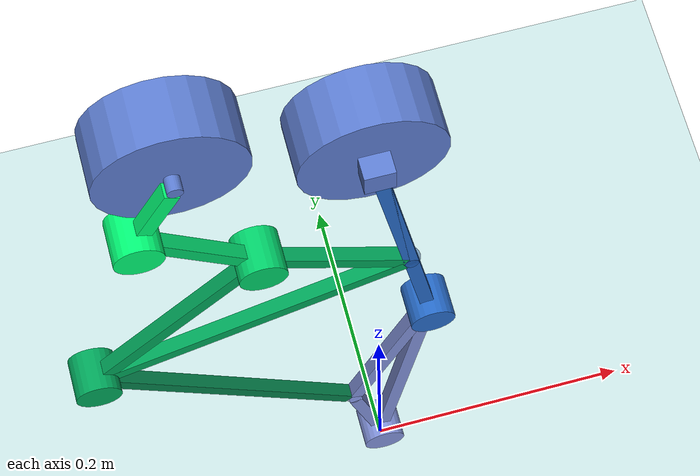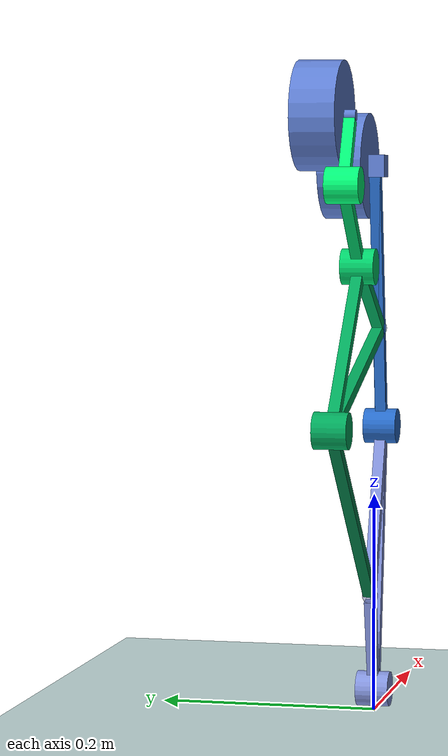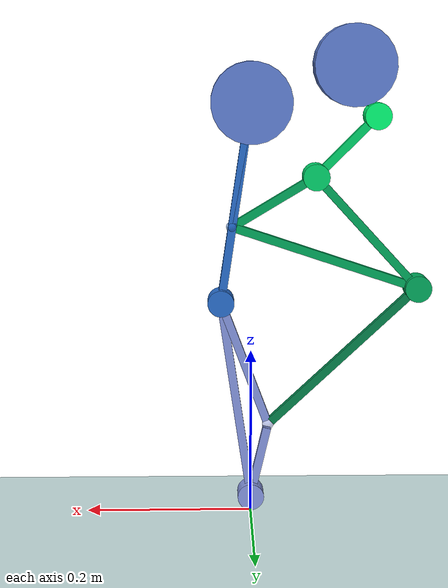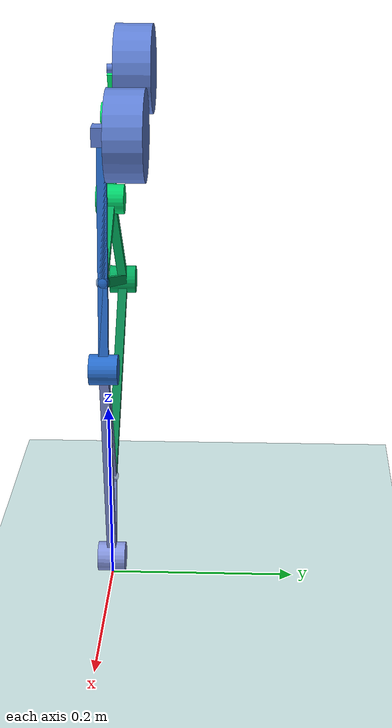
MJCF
<?xml version="1.0" encoding="utf-8"?>
<mujoco model="robot_8">
  <compiler angle="radian" inertiafromgeom="true" coordinate="local" />
  <option timestep="0.01" gravity="0 0 -9.81" integrator="RK4" />
  <size njmax="500" nconmax="100" />
  <worldbody>
    <geom name="floor" type="plane" size="10 10 0.1" pos="0 0 0" rgba="0.8 0.9 0.9 1" />
    <light name="light1" pos="0 0 3" dir="0 0 -1" directional="true" />
    <body name="robot_root" pos="0 0 0.5" quat="1 0 0 0">
      <body name="G">
        <geom name="G_vis0" type="box" rgba="0.37254901960784315 0.5019607843137255 0.8352941176470589 1.0" contype="1" conaffinity="1" pos="0.0 0.0 0.0" quat="1.0 0.0 0.0 0.0" size="0.01 0.01 0.01" />
        <inertial pos="0.0 0.0 0.0" mass="0.0013042811109406167" diaginertia="8.695207406270778e-08 8.695207406270778e-08 8.695207406270778e-08" />
        <body name="L3" pos="0.0 0.0 0.0" quat="0.07437622984429398 5.650851124421949e-17 0.9972302524663743 5.650851124421949e-17">
          <joint name="Main_ground" type="hinge" axis="0 1 0" range="-3.141592653589793 3.141592653589793" damping="0.1" />
          <geom name="L3_vis0" type="box" rgba="0.1568627450980392 0.42745098039215684 0.8 1.0" contype="1" conaffinity="1" pos="1.7610718508157328e-18 0.0 0.196574834605043" quat="1.0 0.0 0.0 0.0" size="0.004999999888241291 0.004999999888241291 0.041110146500595954" />
          <geom name="L3_vis1" type="box" rgba="0.1568627450980392 0.42745098039215684 0.8 1.0" contype="1" conaffinity="1" pos="7.545012591839255e-19 0.0 0.07523234410810287" quat="1.0 0.0 0.0 0.0" size="0.004999999888241291 0.004999999888241291 0.07023234421986158" />
          <geom name="L3_vis2" type="box" rgba="0.1568627450980392 0.42745098039215684 0.8 1.0" contype="1" conaffinity="1" pos="1.0065705916318073e-18 0.0 0.12134249049694011" quat="1.0 0.0 0.0 0.0" size="0.004999999888241291 0.004999999888241291 0.11634249060869882" />
          <inertial pos="0.0 0.0 0.13105" mass="0.017546124353751944" diaginertia="0.0011902346418932457 0.0011978113497965826 7.86914329615975e-06" />
          <body name="L4" pos="2.0131411832636146e-18 0.0 0.24268498099388022" quat="0.9889363528682975 0.0 0.14834045293024475 0.0">
            <joint name="Main_knee" type="hinge" axis="0 1 0" range="-3.141592653589793 3.141592653589793" damping="0.1" />
            <geom name="L4_vis0" type="box" rgba="0.5176470588235295 0.5843137254901961 0.8705882352941177 1.0" contype="1" conaffinity="1" pos="0.016987948669571616 0.0 0.20021510931995118" quat="0.18910752115495139 4.8547991271791733e-17 0.9819563867314218 4.8547991271791733e-17" size="0.004999999888241291 0.004999999888241291 0.04074145177215096" />
            <geom name="L4_vis1" type="box" rgba="0.5176470588235295 0.5843137254901961 0.8705882352941177 1.0" contype="1" conaffinity="1" pos="0.0 0.0 0.12134249049694013" quat="1.0 0.0 0.0 0.0" size="0.004999999888241291 0.004999999888241291 0.1163424906086988" />
            <geom name="L4_vis2" type="box" rgba="0.5176470588235295 0.5843137254901961 0.8705882352941177 1.0" contype="1" conaffinity="1" pos="0.016987948669571616 0.0 0.07887261882301108" quat="0.10587308162694284 -5.440533631833179e-17 -0.9943796511327123 5.440533631833179e-17" size="0.004999999888241291 0.004999999888241291 0.07568135111680818" />
            <inertial pos="0.01133 0.0 0.13348" mass="0.03313548282553443" diaginertia="0.008261641030532445 0.008270122696172381 9.033923662340547e-06" />
            <body name="EE" pos="0.0 0.0 0.24268498099388022" quat="0.07437622984429398 5.650851124421949e-17 0.9972302524663743 5.650851124421949e-17">
              <geom name="EE_vis0" type="sphere" rgba="0.6431372549019608 0.6666666666666666 0.9058823529411765 1.0" contype="1" conaffinity="1" pos="0.0 0.0 0.0" quat="1.0 0.0 0.0 0.0" size="0.002142857142857143" />
              <inertial pos="0.0 0.0 0.0" mass="2.979933439782622e-05" diaginertia="5.473347134294612e-11 5.473347134294612e-11 5.473347134294612e-11" />
            </body>
            <body name="Main_ee_L4Unit" pos="0.0 0.0 0.24268498099388022" quat="0.0525919364819896 0.0525919364819895 0.7051482739233461 -0.705148273923346">
              <geom name="Main_ee_L4Unit_vis0" type="cylinder" rgba="0.5176470588235295 0.5843137254901961 0.8705882352941177 0.9" contype="1" conaffinity="1" size="0.016 0.015" />
              <inertial pos="0 0 0" mass="0.1" diaginertia="0.00065 0.00065 0.0008" />
            </body>
            <body name="Main_connection_2_L4Pseudo" pos="0.03397589733914319 0.0 0.15774523764602216" quat="0.8849644773657072 0.0 -0.4656585377729487 0.0">
              <geom name="Main_connection_2_L4Pseudo_vis0" type="sphere" rgba="0.5176470588235295 0.5843137254901961 0.8705882352941177 0.5" contype="1" conaffinity="1" size="0.007142856983201845" />
              <inertial pos="0 0 0" mass="0.05" diaginertia="1.0204081176495075e-06 1.0204081176495075e-06 1.0204081176495075e-06" />
            </body>
          </body>
          <body name="Main_knee_L3Unit" pos="2.0131411832636146e-18 0.0 0.24268498099388022" quat="0.6992836012750656 0.6992836012750655 0.10489254019125986 -0.10489254019125985">
            <geom name="Main_knee_L3Unit_vis0" type="cylinder" rgba="0.1568627450980392 0.42745098039215684 0.8 0.9" contype="1" conaffinity="1" size="0.016 0.015" />
            <inertial pos="0 0 0" mass="0.1" diaginertia="0.00065 0.00065 0.0008" />
          </body>
          <body name="Main_connection_1_L3Pseudo" pos="1.509002518367851e-18 0.0 0.15046468821620573" quat="1.0 0.0 0.0 0.0">
            <joint name="Main_connection_1_L3_revolute" type="hinge" axis="0 1 0" range="-3.141592653589793 3.141592653589793" damping="0.1" />
            <geom name="Main_connection_1_L3Pseudo_vis0" type="sphere" rgba="0.1568627450980392 0.42745098039215684 0.8 0.5" contype="1" conaffinity="1" size="0.007142856983201845" />
            <inertial pos="0 0 0" mass="0.05" diaginertia="1.0204081176495075e-06 1.0204081176495075e-06 1.0204081176495075e-06" />
          </body>
        </body>
        <body name="Main_ground_GActuator" pos="0.0 0.02499999988824129 0.0" quat="0.0525919364819896 0.0525919364819895 0.7051482739233461 -0.705148273923346">
          <geom name="Main_ground_GActuator_vis0" type="cylinder" rgba="0.37254901960784315 0.5019607843137255 0.8352941176470589 0.9" contype="1" conaffinity="1" size="0.048 0.02" />
          <inertial pos="0 0 0" mass="0.44" diaginertia="0.0067466666666666664 0.0067466666666666664 0.01056" />
        </body>
        <body name="Main_ground_GUnit" pos="0.0 0.0 0.0" quat="0.0525919364819896 0.0525919364819895 0.7051482739233461 -0.705148273923346">
          <geom name="Main_ground_GUnit_vis0" type="cylinder" rgba="0.37254901960784315 0.5019607843137255 0.8352941176470589 0.9" contype="1" conaffinity="1" size="0.004999999888241291 0.004999999888241291" />
          <inertial pos="0 0 0" mass="0.1" diaginertia="0.00020833332867672047 0.00020833332867672047 0.00024999999441206456" />
        </body>
        <body name="L8" pos="-0.12 0.0 0.0432" quat="-0.2297529205473612 7.366262192340669e-17 0.9732489894677302 7.366262192340669e-17">
          <joint name="Ground_connection" type="hinge" axis="0 1 0" range="-3.141592653589793 3.141592653589793" damping="0.1" />
          <geom name="L8_vis0" type="box" rgba="0.0 1.0 0.4666666666666667 1.0" contype="1" conaffinity="1" pos="0.0 0.0 0.03354" quat="1.0 0.0 0.0 0.0" size="0.005 0.005 0.02854101966249684" />
          <inertial pos="0.0 0.0 0.03354" mass="0.004127031443197043" diaginertia="1.1550045059721254e-06 1.1550045059721254e-06 6.878385738661739e-08" />
          <body name="L7" pos="-2.7755575615628914e-17 0.0 0.06708203932499368" quat="0.8105934502576708 0.0 -0.5856093052533957 0.0">
            <joint name="branch_2" type="hinge" axis="0 1 0" range="-3.141592653589793 3.141592653589793" damping="0.1" />
            <geom name="L7_vis0" type="box" rgba="0.0 0.8274509803921568 0.4196078431372549 1.0" contype="1" conaffinity="1" pos="-0.0 0.0 0.05102" quat="1.0 0.0 0.0 0.0" size="0.005 0.005 0.04602495075940789" />
            <inertial pos="-0.0 0.0 0.05102" mass="0.006655207879810382" diaginertia="4.754693680982228e-06 4.754693680982228e-06 1.1092013133017303e-07" />
            <body name="L6" pos="-1.3877787807814457e-17 0.0 0.1020499015188158" quat="0.7210574409166608 0.0 0.6928752895714468 0.0">
              <joint name="branch_1" type="hinge" axis="0 1 0" range="-3.141592653589793 3.141592653589793" damping="0.1" />
              <geom name="L6_vis0" type="box" rgba="0.0 0.6627450980392157 0.3607843137254902 1.0" contype="1" conaffinity="1" pos="-0.057113338880326596 0.0 0.07936339535290166" quat="0.25072197975585586 -4.392423255428797e-17 -0.9680591350053488 4.392423255428797e-17" size="0.004999999888241291 0.004999999888241291 0.11265577770045174" />
              <geom name="L6_vis1" type="box" rgba="0.0 0.6627450980392157 0.3607843137254902 1.0" contype="1" conaffinity="1" pos="-4.9873299934333204e-18 0.0 0.09111356649807972" quat="1.0 0.0 0.0 0.0" size="0.004999999888241291 0.004999999888241291 0.08611356660983846" />
              <geom name="L6_vis2" type="box" rgba="0.0 0.6627450980392157 0.3607843137254902 1.0" contype="1" conaffinity="1" pos="-0.05711333888032659 0.0 -0.011750171145178095" quat="0.7750850832837765 0.0 0.6318568775213113 0.0" size="0.004999999888241291 0.004999999888241291 0.05330951906021172" />
              <inertial pos="-0.03808 0.0 0.05291" mass="0.03738078705149198" diaginertia="0.0017529759272858496 0.002009230479922139 0.00025687756572596323" />
              <body name="L5" pos="-7.37257477290143e-18 0.0 0.18222713299615947" quat="0.7097909325734693 0.0 -0.7044124019610137 0.0">
                <joint name="branch_0" type="hinge" axis="0 1 0" range="-3.141592653589793 3.141592653589793" damping="0.1" />
                <geom name="L5_vis0" type="box" rgba="0.01568627450980392 0.5058823529411764 0.29411764705882354 1.0" contype="1" conaffinity="1" pos="0.0 0.0 0.12311" quat="1.0 0.0 0.0 0.0" size="0.005 0.005 0.11810970717209913" />
                <inertial pos="0.0 0.0 0.12311" mass="0.017078663657085536" diaginertia="7.955755558416563e-05 7.955755558416563e-05 2.846443942847589e-07" />
                <body name="Main_connection_2_L5Pseudo" pos="0.0 0.0 0.2462194143441983" quat="1.0 0.0 0.0 0.0">
                  <joint name="Main_connection_2_L5_revolute" type="hinge" axis="0 1 0" range="-3.141592653589793 3.141592653589793" damping="0.1" />
                  <geom name="Main_connection_2_L5Pseudo_vis0" type="sphere" rgba="0.01568627450980392 0.5058823529411764 0.29411764705882354 0.5" contype="1" conaffinity="1" size="0.0071428571428571435" />
                  <inertial pos="0 0 0" mass="0.05" diaginertia="1.0204081632653065e-06 1.0204081632653065e-06 1.0204081632653065e-06" />
                </body>
              </body>
              <body name="branch_0_L6Unit" pos="-7.37257477290143e-18 0.0 0.18222713299615947" quat="0.5018979816474238 0.5018979816474236 -0.49809478617853703 0.49809478617853675">
                <geom name="branch_0_L6Unit_vis0" type="cylinder" rgba="0.0 0.6627450980392157 0.3607843137254902 0.9" contype="1" conaffinity="1" size="0.016 0.015" />
                <inertial pos="0 0 0" mass="0.1" diaginertia="0.00065 0.00065 0.0008" />
              </body>
              <body name="Main_connection_1_L6Pseudo" pos="-0.11422667776065319 0.0 -0.02350034229035615" quat="0.9021338974298316 0.0 -0.4314561751882363 0.0">
                <geom name="Main_connection_1_L6Pseudo_vis0" type="sphere" rgba="0.0 0.6627450980392157 0.3607843137254902 0.5" contype="1" conaffinity="1" size="0.007142856983201845" />
                <inertial pos="0 0 0" mass="0.05" diaginertia="1.0204081176495075e-06 1.0204081176495075e-06 1.0204081176495075e-06" />
              </body>
            </body>
            <body name="branch_1_L7Unit" pos="-1.3877787807814457e-17 0.0 0.1020499015188158" quat="0.5098646060971892 0.5098646060971891 0.48993681577256293 -0.4899368157725627">
              <geom name="branch_1_L7Unit_vis0" type="cylinder" rgba="0.0 0.8274509803921568 0.4196078431372549 0.9" contype="1" conaffinity="1" size="0.016 0.015" />
              <inertial pos="0 0 0" mass="0.1" diaginertia="0.00065 0.00065 0.0008" />
            </body>
          </body>
          <body name="branch_2_L8Unit" pos="-2.7755575615628914e-17 0.0 0.06708203932499368" quat="0.5731761254625994 0.5731761254625994 -0.414088310870619 0.41408831087061904">
            <geom name="branch_2_L8Unit_vis0" type="cylinder" rgba="0.0 1.0 0.4666666666666667 0.9" contype="1" conaffinity="1" size="0.016 0.015" />
            <inertial pos="0 0 0" mass="0.1" diaginertia="0.00065 0.00065 0.0008" />
          </body>
        </body>
        <body name="Ground_connection_GActuator" pos="-0.12 0.025 0.0432" quat="-0.1624598481164532 -0.16245984811645317 0.688190960235587 -0.6881909602355866">
          <geom name="Ground_connection_GActuator_vis0" type="cylinder" rgba="0.37254901960784315 0.5019607843137255 0.8352941176470589 0.9" contype="1" conaffinity="1" size="0.048 0.02" />
          <inertial pos="0 0 0" mass="0.44" diaginertia="0.0067466666666666664 0.0067466666666666664 0.01056" />
        </body>
        <body name="Ground_connection_GUnit" pos="-0.12 0.0 0.0432" quat="-0.1624598481164532 -0.16245984811645317 0.688190960235587 -0.6881909602355866">
          <geom name="Ground_connection_GUnit_vis0" type="cylinder" rgba="0.37254901960784315 0.5019607843137255 0.8352941176470589 0.9" contype="1" conaffinity="1" size="0.005 0.005" />
          <inertial pos="0 0 0" mass="0.1" diaginertia="0.00020833333333333332 0.00020833333333333332 0.00025" />
        </body>
      </body>
    </body>
  </worldbody>
  <actuator>
    <motor name="Main_ground_motor" joint="Main_ground" gear="80" ctrlrange="-1.0 1.0" forcerange="-50 50" />
    <motor name="Main_knee_motor" joint="Main_knee" gear="150" ctrlrange="-1.0 1.0" forcerange="-50 50" />
    <motor name="Main_connection_1_L3_revolute_motor" joint="Main_connection_1_L3_revolute" gear="1" ctrlrange="-1.0 1.0" forcerange="-50 50" />
    <motor name="Ground_connection_motor" joint="Ground_connection" gear="80" ctrlrange="-1.0 1.0" forcerange="-50 50" />
    <motor name="branch_2_motor" joint="branch_2" gear="1" ctrlrange="-1.0 1.0" forcerange="-50 50" />
    <motor name="branch_1_motor" joint="branch_1" gear="1" ctrlrange="-1.0 1.0" forcerange="-50 50" />
    <motor name="branch_0_motor" joint="branch_0" gear="1" ctrlrange="-1.0 1.0" forcerange="-50 50" />
    <motor name="Main_connection_2_L5_revolute_motor" joint="Main_connection_2_L5_revolute" gear="1" ctrlrange="-1.0 1.0" forcerange="-50 50" />
  </actuator>
</mujoco>
